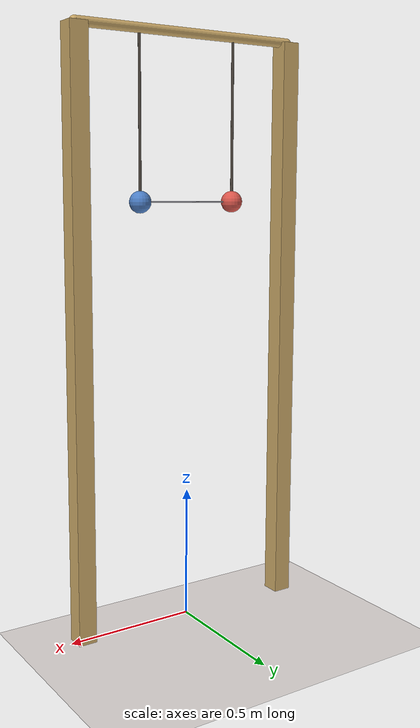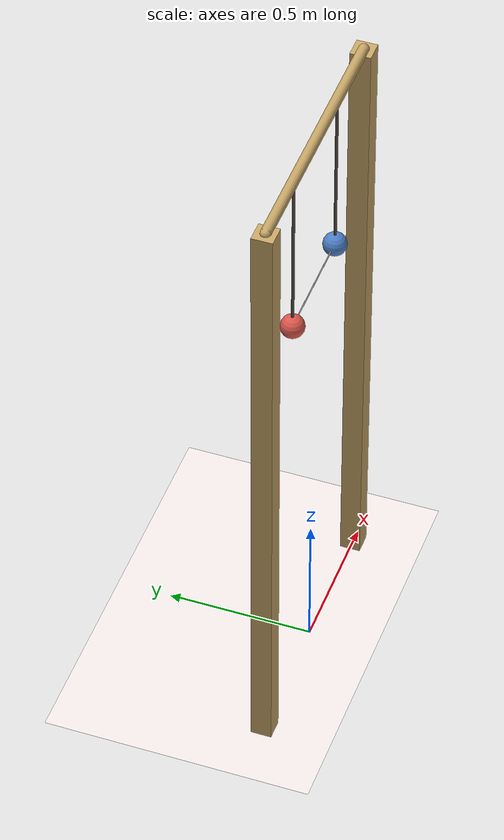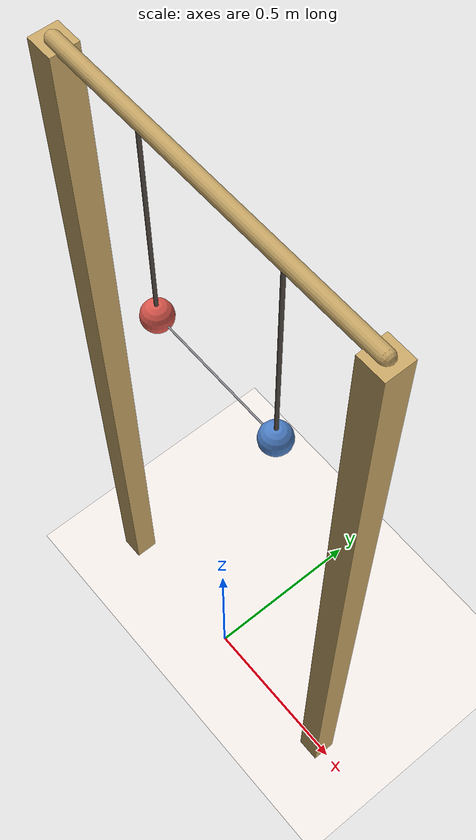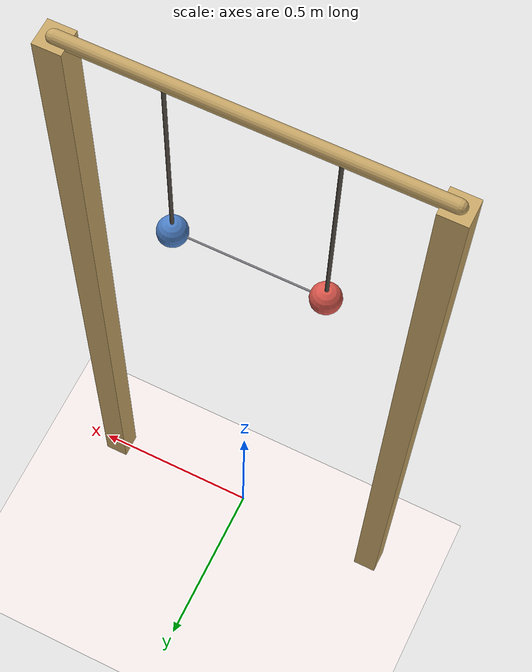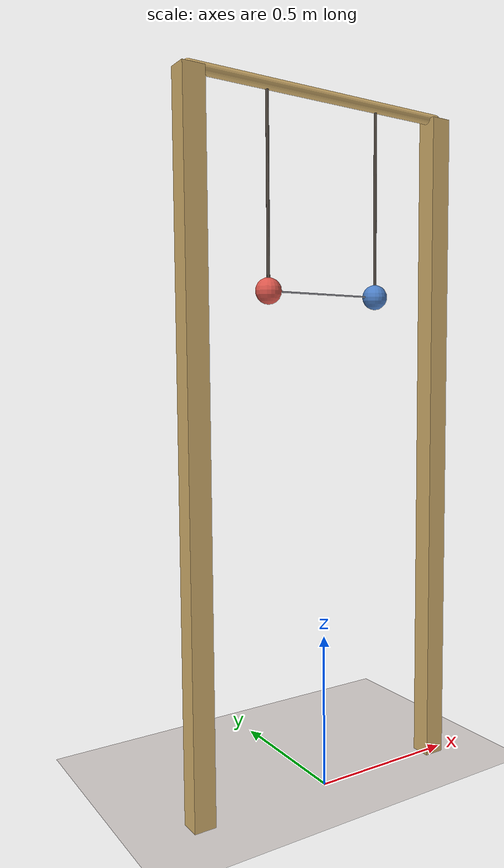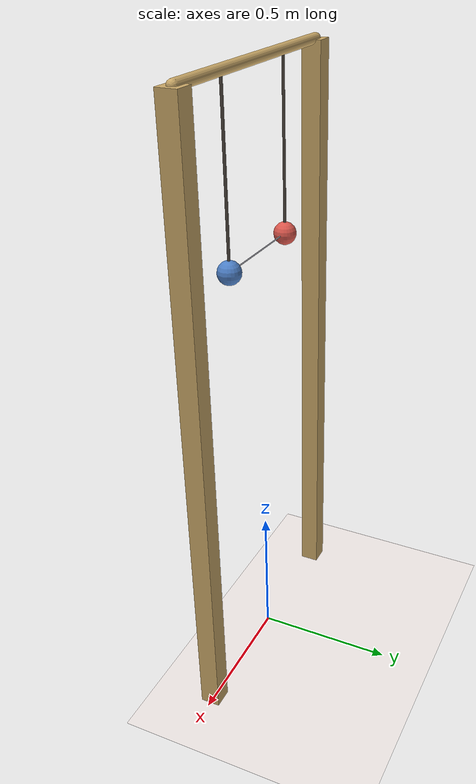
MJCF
<mujoco model="coupled_pendulums">
  <compiler angle="radian" coordinate="local" autolimits="true"/>
  <option timestep="0.001" gravity="0 0 -9.81" integrator="implicitfast"/>

  <visual>
    <headlight diffuse="0 0 0" ambient="0.50 0.48 0.55" specular="0 0 0"/>
    <rgba haze="0.94 0.91 0.90 1"/>
    <global azimuth="120" elevation="-12" offwidth="1920" offheight="1080" fovy="38"/>
    <quality shadowsize="8192" offsamples="8"/>
    <map shadowclip="5" shadowscale="0.7"/>
  </visual>

  <asset>
    <texture type="skybox" builtin="flat"
             rgb1="0.74 0.68 0.86" rgb2="0.74 0.68 0.86"
             width="512" height="512" mark="none" markrgb="0 0 0"/>
    <material name="floor_mat"   rgba="0.94 0.91 0.90 1" specular="0" shininess="0"/>
    <material name="frame_wood"  rgba="0.78 0.65 0.40 1" specular="0.12" shininess="0.15"/>
    <material name="rod_mat"     rgba="0.30 0.27 0.24 1" specular="0" shininess="0"/>
    <material name="bob_a"       rgba="0.86 0.34 0.30 1" specular="0.4" shininess="0.55"/>
    <material name="bob_b"       rgba="0.30 0.50 0.78 1" specular="0.4" shininess="0.55"/>
    <material name="spring_mat"  rgba="0.55 0.55 0.58 1" specular="0.6" shininess="0.7"/>
  </asset>

  <worldbody>
    <light pos="0 0 12" dir="-0.30 0.55 -1" directional="true" castshadow="true"
           diffuse="0.85 0.82 0.78" specular="0.15 0.15 0.15"/>
    <light pos="0 0 8" dir="0.40 -0.30 -1" directional="true" castshadow="false"
           diffuse="0.28 0.28 0.34" specular="0 0 0"/>

    <geom name="floor" type="plane" size="40 40 0.1" material="floor_mat"/>

    <!-- Wooden stand: two posts + horizontal bar. -->
    <geom type="box" size="0.035 0.035 1.10"
          pos="-0.45 0 1.10" material="frame_wood"/>
    <geom type="box" size="0.035 0.035 1.10"
          pos=" 0.45 0 1.10" material="frame_wood"/>
    <geom type="capsule" fromto="-0.45 0 2.20  0.45 0 2.20"
          size="0.018" material="frame_wood"/>

    <!-- Pendulum A: hinge at x=-0.20, swings in y-z plane (axis along +x). -->
    <body name="pendA" pos="-0.20 0 2.20">
      <joint name="jA" type="hinge" axis="1 0 0" damping="0.0006"/>
      <geom type="capsule" fromto="0 0 0  0 0 -0.60" size="0.005"
            material="rod_mat" contype="0" conaffinity="0"/>
      <geom name="bobA" type="sphere" pos="0 0 -0.60" size="0.040" mass="0.10"
            material="bob_a" contype="0" conaffinity="0"/>
      <!-- Site at the bob center for the coupling spring. -->
      <site name="sA" pos="0 0 -0.60" size="0.001"/>
    </body>

    <!-- Pendulum B: hinge at x=+0.20.  Same length and mass. -->
    <body name="pendB" pos="0.20 0 2.20">
      <joint name="jB" type="hinge" axis="1 0 0" damping="0.0006"/>
      <geom type="capsule" fromto="0 0 0  0 0 -0.60" size="0.005"
            material="rod_mat" contype="0" conaffinity="0"/>
      <geom name="bobB" type="sphere" pos="0 0 -0.60" size="0.040" mass="0.10"
            material="bob_b" contype="0" conaffinity="0"/>
      <site name="sB" pos="0 0 -0.60" size="0.001"/>
    </body>
  </worldbody>

  <!-- Coupling spring: tendon between the two bob sites.  Natural length =
       0.40 (the rest separation), gentle stiffness, light damping. -->
  <tendon>
    <spatial name="spring" stiffness="0.275" springlength="0.40"
             damping="0.005" width="0.0025" rgba="0.55 0.55 0.58 0.9">
      <site site="sA"/>
      <site site="sB"/>
    </spatial>
  </tendon>

  <worldbody>
    <camera name="cam" pos="1.6 -2.4 1.40" fovy="40"
            xyaxes="0.832 0.555 0   0 0 1"/>
  </worldbody>
</mujoco>
